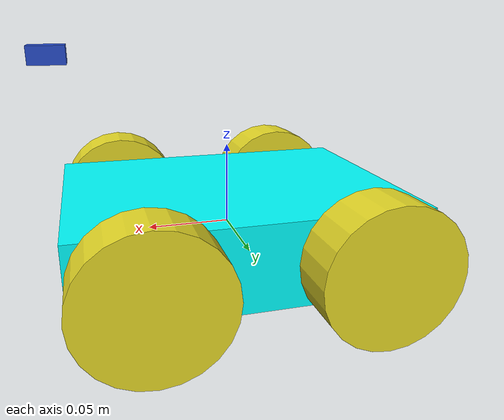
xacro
<?xml version='1.0'?>

<robot name="robot" xmlns:xacro="http://www.ros.org/wiki/xacro">

  <xacro:property name="ball_radius" value="0.04"/>
  <xacro:property name="ball_mass" value="0.01"/>
  <xacro:property name="camera_width" value="0.02"/>
  <xacro:property name="camera_length" value="0.02"/>
  <xacro:property name="camera_height" value="0.01"/>
  <xacro:property name="camera_mass" value="0.01"/>
  <xacro:property name="chassis_width" value="0.15"/>
  <xacro:property name="chassis_length" value="0.2"/>
  <xacro:property name="chassis_height" value="0.05"/>
  <xacro:property name="chassis_mass" value="0.8"/>
  <xacro:property name="wheel_radius" value="0.04"/>
  <xacro:property name="wheel_width" value="0.03"/>
  <xacro:property name="wheel_mass" value="0.025"/>

  <xacro:include filename="$(find smartcarts)/urdf/macros.xacro"/>
  <xacro:include filename="$(find smartcarts)/urdf/materials.xacro"/>

  <link name="base_footprint"/>

  <link name="base_link">
    <xacro:box_inertial name="base_link" m="${chassis_mass}" x="${chassis_length}" y="${chassis_width}" z="${chassis_height}"/>
    <collision name='chassis_collision'>
      <geometry>
        <box size="${chassis_length} ${chassis_width} ${chassis_height}"/>
      </geometry>
    </collision>
    <visual name='chassis_visual'>
      <origin xyz="0 0 0" rpy=" 0 0 0"/>
      <geometry>
        <box size="${chassis_length} ${chassis_width} ${chassis_height}"/>
      </geometry>
      <material name="Cyan">
        <color rgba="0 1.0 1.0 1.0"/>
      </material>
    </visual>
  </link>

  <link name='wheel_FR'>
    <xacro:cylinder_inertial name="wheel_FR" m="${wheel_mass}" r="${wheel_radius}" h="${wheel_width}"/>
    <collision name='wheel_FR_collision'>
      <origin xyz="0 0 0" rpy="1.5708 0 0"/>
      <geometry>
        <cylinder radius="${wheel_radius}" length="${wheel_width}"/>
      </geometry>
    </collision>
    <visual name='wheel_FR_visual'>
      <origin xyz="0 0 0" rpy="1.5708 0 0"/>
      <geometry>
        <cylinder radius="${wheel_radius}" length="${wheel_width}"/>
      </geometry>
    </visual>
  </link>

  <link name='wheel_FL'>
    <xacro:cylinder_inertial name="wheel_FL" m="${wheel_mass}" r="${wheel_radius}" h="${wheel_width}"/>
    <collision name='wheel_FL_collision'>
      <origin xyz="0 0 0" rpy="1.5708 0 0"/>
      <geometry>
        <cylinder radius="${wheel_radius}" length="${wheel_width}"/>
      </geometry>
    </collision>
    <visual name='wheel_FL_visual'>
      <origin xyz="0 0 0" rpy="1.5708 0 0"/>
      <geometry>
        <cylinder radius="${wheel_radius}" length="${wheel_width}"/>
      </geometry>
    </visual>
  </link>

  <link name='wheel_RR'>
    <xacro:cylinder_inertial name="wheel_RR" m="${wheel_mass}" r="${wheel_radius}" h="${wheel_width}"/>
    <collision name='wheel_RR_collision'>
      <origin xyz="0 0 0" rpy="1.5708 0 0"/>
      <geometry>
        <cylinder radius="${wheel_radius}" length="${wheel_width}"/>
      </geometry>
    </collision>
    <visual name='wheel_RR_visual'>
      <origin xyz="0 0 0" rpy="1.5708 0 0"/>
      <geometry>
        <cylinder radius="${wheel_radius}" length="${wheel_width}"/>
      </geometry>
    </visual>
  </link>

  <link name='wheel_RL'>
    <xacro:cylinder_inertial name="wheel_RL" m="${wheel_mass}" r="${wheel_radius}" h="${wheel_width}"/>
    <collision name='wheel_RL_collision'>
      <origin xyz="0 0 0" rpy="1.5708 0 0"/>
      <geometry>
        <cylinder radius="${wheel_radius}" length="${wheel_width}"/>
      </geometry>
    </collision>
    <visual name='wheel_RL_visual'>
      <origin xyz="0 0 0" rpy="1.5708 0 0"/>
      <geometry>
        <cylinder radius="${wheel_radius}" length="${wheel_width}"/>
      </geometry>
    </visual>
  </link>

  <link name='camera_link'>
    <xacro:box_inertial name="camera_link" m="${camera_mass}" x="${camera_width}" y="${camera_length}" z="${camera_height}"/>
    <collision name='camera_link_collision'>
      <geometry>
        <box size="${camera_length} ${camera_width} ${camera_height}"/>
      </geometry>
    </collision>
    <visual name='camera_link_visual'>
      <origin xyz="0 0 0" rpy=" 0 0 0"/>
      <geometry>
        <box size="${camera_length} ${camera_width} ${camera_height}"/>
      </geometry>
    </visual>
  </link>

  <link name="imu_link">
    <inertial>
      <mass value="0.001"/>
      <origin rpy="0 0 0" xyz="0 0 0"/>
      <inertia ixx="0.0001" ixy="0" ixz="0" iyy="0.000001" iyz="0" izz="0.0001"/>
    </inertial>
    <visual>
      <origin rpy="0 0 0" xyz="0 0 0"/>
      <geometry>
        <box size="0.001 0.001 0.001"/>
      </geometry>
    </visual>
    <collision>
      <origin rpy="0 0 0" xyz="0 0 0"/>
      <geometry>
        <box size=".001 .001 .001"/>
      </geometry>
    </collision>
  </link>

  <joint name="base_link_footprint" type="fixed">
    <parent link = "base_footprint"/>
    <child link = "base_link"/>
  </joint>

  <joint name="wheel_FR_joint" type="continuous">
    <parent link="base_link"/>
    <child link="wheel_FR"/>
    <origin xyz="${chassis_length/2-wheel_radius} -${chassis_width/2+wheel_width/2} 0"
            rpy="0 0 0"/>
    <axis xyz="0 1 0"/>
  </joint>

  <joint name="wheel_FL_joint" type="continuous">
    <parent link="base_link"/>
    <child link="wheel_FL"/>
    <origin xyz="${chassis_length/2-wheel_radius} ${chassis_width/2+wheel_width/2} 0"
            rpy="0 0 0"/>
    <axis xyz="0 1 0"/>
  </joint>

  <joint name="wheel_RR_joint" type="continuous">
    <parent link="base_link"/>
    <child link="wheel_RR"/>
    <origin xyz="-${chassis_length/2-wheel_radius} -${chassis_width/2+wheel_width/2} 0"
            rpy="0 0 0"/>
    <axis xyz="0 1 0"/>
  </joint>

  <joint name="wheel_RL_joint" type="continuous">
    <parent link="base_link"/>
    <child link="wheel_RL"/>
    <origin xyz="-${chassis_length/2-wheel_radius} ${chassis_width/2+wheel_width/2} 0"
            rpy="0 0 0"/>
    <axis xyz="0 1 0"/>
  </joint>

  <joint name="camera_joint" type="fixed">
    <parent link="base_link"/>
    <child link="camera_link"/>
    <origin xyz="${chassis_length/2} 0 ${chassis_height*2+camera_height/2}"/>
  </joint>

  <joint name="imu_link" type="fixed">
    <axis xyz="1 0 0"/>
    <origin xyz="0 0 0"/>
    <parent link="base_link"/>
    <child link="imu_link"/>
  </joint>

  <gazebo reference="base_link">
    <material>Gazebo/Grey</material>
  </gazebo>

  <gazebo reference="ball">
    <material>Gazebo/Red</material>
  </gazebo>

  <gazebo reference="camera_link">
    <material>Gazebo/Blue</material>
  </gazebo>

  <gazebo reference="wheel_FL">
    <material>Gazebo/Yellow</material>
  </gazebo>

  <gazebo reference="wheel_FR">
    <material>Gazebo/Yellow</material>
  </gazebo>

  <gazebo reference="wheel_RL">
    <material>Gazebo/Yellow</material>
  </gazebo>

  <gazebo reference="wheel_RR">
    <material>Gazebo/Yellow</material>
  </gazebo>

  <gazebo>

    <plugin name="skid_steer_drive_controller" filename="libgazebo_ros_skid_steer_drive.so">
      <updateRate>100.0</updateRate>
      <leftFrontJoint>wheel_FL_joint</leftFrontJoint>
      <rightFrontJoint>wheel_FR_joint</rightFrontJoint>
      <leftRearJoint>wheel_RL_joint</leftRearJoint>
      <rightRearJoint>wheel_RR_joint</rightRearJoint>
      <wheelSeparation>0.4</wheelSeparation>
      <wheelDiameter>0.215</wheelDiameter>
      <robotBaseFrame>chassis</robotBaseFrame>
      <torque>20</torque>
      <topicName>cmd_vel</topicName>
      <covariance_x>0.01</covariance_x>
      <covariance_y>0.01</covariance_y>
      <covariance_yaw>0.1</covariance_yaw>
      <broadcastTF>true</broadcastTF>
    </plugin>

    <plugin name="p3d_base_controller" filename="libgazebo_ros_p3d.so">
      <alwaysOn>true</alwaysOn>
      <updateRate>50.0</updateRate>
      <bodyName>base_link</bodyName>
      <topicName>ground_truth/state</topicName>
      <gaussianNoise>0.01</gaussianNoise>
      <frameName>base_link</frameName>
      <xyzOffset>0 0 0</xyzOffset>
      <rpyOffset>0 0 0</rpyOffset>
    </plugin>
  </gazebo>

  <xacro:property name="camera_name" value="camera1"/>

  <gazebo reference="camera_link">
    <sensor name="${camera_name}" type="depth">
      <update_rate>100</update_rate>
      <camera>
        <horizontal_fov>1.7</horizontal_fov>
        <image>
          <width>620</width>
          <height>480</height>
          <format>R8G8B8</format>
        </image>
        <clip>
          <near>0.05</near>
          <far>3</far>
        </clip>
      </camera>
      <plugin name="camera_plugin" filename="libgazebo_ros_openni_kinect.so">
        <baseline>0.2</baseline>
        <alwaysOn>true</alwaysOn>
        <updateRate>100.0</updateRate>
        <imageTopicName>${camera_name}/color/image_raw</imageTopicName>
        <cameraInfoTopicName>${camera_name}/color/camera_info</cameraInfoTopicName>
        <depthImageTopicName>${camera_name}/depth/image_raw</depthImageTopicName>
        <depthImageInfoTopicName>${camera_name}/depth/camera_info</depthImageInfoTopicName>
        <pointCloudTopicName>${camera_name}/depth/points</pointCloudTopicName>
        <frameName>kinect_frame</frameName>
        <pointCloudCutoff>0.28</pointCloudCutoff>
        <pointCloudCutoffMax>3.0</pointCloudCutoffMax>
        <distortionK1>0.0000000</distortionK1>
        <distortionK2>0.0000000</distortionK2>
        <distortionK3>0.0000000</distortionK3>
        <distortionT1>0.0000000</distortionT1>
        <distortionT2>0.0000000</distortionT2>
        <CxPrime>0</CxPrime>
        <Cx>0</Cx>
        <Cy>0</Cy>
        <focalLength>0</focalLength>
        <hackBaseline>0</hackBaseline>
      </plugin>
    </sensor>
  </gazebo>

  <gazebo reference="imu_link">
    <gravity>true</gravity>
    <sensor name="imu_sensor" type="imu">
      <always_on>true</always_on>
      <update_rate>30</update_rate>
      <visualize>true</visualize>
      <topic>__default_topic__</topic>
      <plugin filename="libgazebo_ros_imu_sensor.so" name="imu_plugin">
        <topicName>imu</topicName>
        <bodyName>imu_link</bodyName>
        <updateRateHZ>30</updateRateHZ>
        <gaussianNoise>0.5</gaussianNoise>
        <xyzOffset>0 0 0</xyzOffset>
        <rpyOffset>0 0 0</rpyOffset>
        <frameName>imu_link</frameName>
        <initialOrientationAsReference>false</initialOrientationAsReference>
      </plugin>
      <pose>0 0 0 0 0 0</pose>
    </sensor>
  </gazebo>

</robot>
